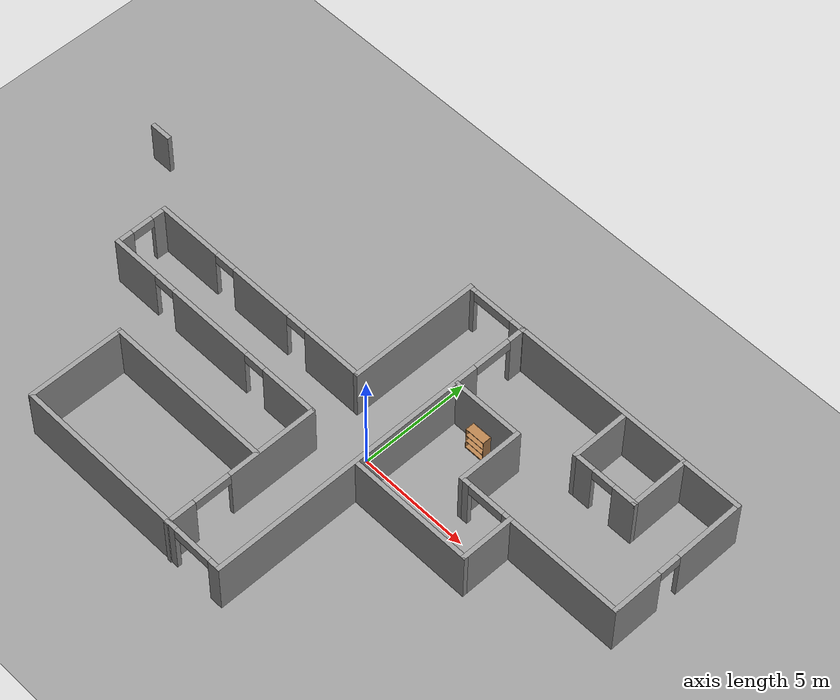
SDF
<sdf version="1.4">
 <world name="default">
  <light name="sun" type="directional">
   <pose>0 0 10 0 -0 0</pose>
   <diffuse>0.8 0.8 0.8 1</diffuse>
   <specular>0.2 0.2 0.2 1</specular>
   <attenuation>
    <range>1000</range>
    <constant>0.9</constant>
    <linear>0.01</linear>
    <quadratic>0.001</quadratic>
   </attenuation>
   <direction>0.5 0.1 -0.9</direction>
  </light>
  <scene><ambient>0.4 0.4 0.4 1</ambient><background>0.7 0.7 0.7 1</background><shadows>1</shadows></scene>
  <physics type="ode">
   <max_step_size>0.01</max_step_size>
   <real_time_factor>1</real_time_factor>
   <real_time_update_rate>100</real_time_update_rate>
   <gravity>0 0 -9.8</gravity>
  </physics>
  <model name="bookshelf">
   <static>1</static>
   <link name="link">
    <inertial><mass>1</mass></inertial>
    <collision name="back">
     <pose>0 0.005 0.6 0 -0 0</pose>
     <geometry><box><size>0.9 0.01 1.2</size></box></geometry>
    </collision>
    <visual name="visual1">
     <pose>0 0.005 0.6 0 -0 0</pose>
     <geometry><box><size>0.9 0.01 1.2</size></box></geometry>
     <material>
      <script><uri>file://media/materials/scripts/gazebo.material</uri><name>Gazebo/Wood</name></script>
     </material>
    </visual>
    <collision name="left_side">
     <pose>0.45 -0.195 0.6 0 -0 0</pose>
     <geometry><box><size>0.02 0.4 1.2</size></box></geometry>
    </collision>
    <visual name="visual2">
     <pose>0.45 -0.195 0.6 0 -0 0</pose>
     <geometry><box><size>0.02 0.4 1.2</size></box></geometry>
     <material>
      <script><uri>file://media/materials/scripts/gazebo.material</uri><name>Gazebo/Wood</name></script>
     </material>
    </visual>
    <collision name="right_side">
     <pose>-0.45 -0.195 0.6 0 -0 0</pose>
     <geometry><box><size>0.02 0.4 1.2</size></box></geometry>
    </collision>
    <visual name="visual3">
     <pose>-0.45 -0.195 0.6 0 -0 0</pose>
     <geometry><box><size>0.02 0.4 1.2</size></box></geometry>
     <material>
      <script><uri>file://media/materials/scripts/gazebo.material</uri><name>Gazebo/Wood</name></script>
     </material>
    </visual>
    <collision name="bottom">
     <pose>0 -0.195 0.03 0 -0 0</pose>
     <geometry><box><size>0.88 0.4 0.06</size></box></geometry>
    </collision>
    <visual name="visual4">
     <pose>0 -0.195 0.03 0 -0 0</pose>
     <geometry><box><size>0.88 0.4 0.06</size></box></geometry>
     <material>
      <script><uri>file://media/materials/scripts/gazebo.material</uri><name>Gazebo/Wood</name></script>
     </material>
    </visual>
    <collision name="top">
     <pose>0 -0.195 1.19 0 -0 0</pose>
     <geometry><box><size>0.88 0.4 0.02</size></box></geometry>
    </collision>
    <visual name="visual5">
     <pose>0 -0.195 1.19 0 -0 0</pose>
     <geometry><box><size>0.88 0.4 0.02</size></box></geometry>
     <material>
      <script><uri>file://media/materials/scripts/gazebo.material</uri><name>Gazebo/Wood</name></script>
     </material>
    </visual>
    <collision name="low_shelf">
     <pose>0 -0.195 0.43 0 -0 0</pose>
     <geometry><box><size>0.88 0.4 0.02</size></box></geometry>
    </collision>
    <visual name="visual6">
     <pose>0 -0.195 0.43 0 -0 0</pose>
     <geometry><box><size>0.88 0.4 0.02</size></box></geometry>
     <material>
      <script><uri>file://media/materials/scripts/gazebo.material</uri><name>Gazebo/Wood</name></script>
     </material>
    </visual>
    <collision name="high_shelf">
     <pose>0 -0.195 0.8 0 -0 0</pose>
     <geometry><box><size>0.88 0.4 0.02</size></box></geometry>
    </collision>
    <visual name="visual7">
     <pose>0 -0.195 0.8 0 -0 0</pose>
     <geometry><box><size>0.88 0.4 0.02</size></box></geometry>
     <material>
      <script><uri>file://media/materials/scripts/gazebo.material</uri><name>Gazebo/Wood</name></script>
     </material>
    </visual>
    <velocity_decay><linear>0</linear><angular>0</angular></velocity_decay>
   </link>
   <pose>2.51842 3.49879 0 0 -0 0</pose>
  </model>
  <model name="ground_plane_0">
   <static>1</static>
   <link name="link">
    <collision name="collision">
     <geometry><plane><normal>0 0 1</normal><size>100 100</size></plane></geometry>
     <surface><friction><ode><mu>100</mu><mu2>50</mu2></ode></friction></surface>
    </collision>
    <visual name="visual">
     <cast_shadows>0</cast_shadows>
     <geometry><plane><normal>0 0 1</normal><size>100 100</size></plane></geometry>
     <material>
      <script><uri>file://media/materials/scripts/gazebo.material</uri><name>Gazebo/Grey</name></script>
     </material>
    </visual>
    <velocity_decay><linear>0</linear><angular>0</angular></velocity_decay>
   </link>
   <pose>0.497681 0 0 0 -0 0</pose>
  </model>
  <spherical_coordinates>
   <surface_model>EARTH_WGS84</surface_model>
   <latitude_deg>0</latitude_deg>
   <longitude_deg>0</longitude_deg>
   <elevation>0</elevation>
   <heading_deg>0</heading_deg>
  </spherical_coordinates>
  <model name="turtlebot_hallways">
   <link name="Door_0">
    <collision name="Door_0_Collision">
     <geometry><box><size>1 0.2 2</size></box></geometry>
     <pose>0 0 1 0 -0 0</pose>
    </collision>
    <visual name="Door_0_Visual">
     <pose>0 0 1 0 -0 0</pose>
     <geometry><box><size>1 0.2 2</size></box></geometry>
     <material>
      <script><uri>file://media/materials/scripts/gazebo.material</uri><name>Gazebo/Grey</name></script>
     </material>
    </visual>
    <velocity_decay><linear>0</linear><angular>0</angular></velocity_decay>
    <pose>-14.0824 4.01277 0 0 -0 0</pose>
   </link>
   <link name="Wall_12">
    <collision name="Wall_12_Collision">
     <geometry><box><size>6.1036 0.2 2.5</size></box></geometry>
     <pose>0 0 1.25 0 -0 0</pose>
    </collision>
    <visual name="Wall_12_Visual">
     <pose>0 0 1.25 0 -0 0</pose>
     <geometry><box><size>6.1036 0.2 2.5</size></box></geometry>
     <material>
      <script><uri>file://media/materials/scripts/gazebo.material</uri><name>Gazebo/Grey</name></script>
     </material>
    </visual>
    <velocity_decay><linear>0</linear><angular>0</angular></velocity_decay>
    <pose>0.131368 4.23159 0 0 -0 1.5708</pose>
   </link>
   <link name="Wall_21">
    <pose>0.204907 -4.58192 0 0 0 -1.5708</pose>
    <visual name="Wall_21_Visual_0">
     <pose>-1.52877 0 1.25 0 -0 0</pose>
     <geometry><box><size>4.15745 0.2 2.5</size></box></geometry>
     <material>
      <script><uri>file://media/materials/scripts/gazebo.material</uri><name>Gazebo/Grey</name></script>
     </material>
    </visual>
    <collision name="Wall_21_Collision_0">
     <geometry><box><size>4.15745 0.2 2.5</size></box></geometry>
     <pose>-1.52877 0 1.25 0 -0 0</pose>
    </collision>
    <visual name="Wall_21_Visual_1">
     <pose>2.92258 0 1.25 0 -0 0</pose>
     <geometry><box><size>1.36985 0.2 2.5</size></box></geometry>
     <material>
      <script><uri>file://media/materials/scripts/gazebo.material</uri><name>Gazebo/Grey</name></script>
     </material>
    </visual>
    <collision name="Wall_21_Collision_1">
     <geometry><box><size>1.36985 0.2 2.5</size></box></geometry>
     <pose>2.92258 0 1.25 0 -0 0</pose>
    </collision>
    <visual name="Wall_21_Visual_2">
     <pose>1.3938 0 2.25 0 -0 0</pose>
     <geometry><box><size>1.6877 0.2 0.5</size></box></geometry>
     <material>
      <script><uri>file://media/materials/scripts/gazebo.material</uri><name>Gazebo/Grey</name></script>
     </material>
    </visual>
    <collision name="Wall_21_Collision_2">
     <geometry><box><size>1.6877 0.2 0.5</size></box></geometry>
     <pose>1.3938 0 2.25 0 -0 0</pose>
    </collision>
    <velocity_decay><linear>0</linear><angular>0</angular></velocity_decay>
   </link>
   <link name="Wall_23">
    <collision name="Wall_23_Collision">
     <geometry><box><size>7.79 0.2 2.5</size></box></geometry>
     <pose>0 0 1.25 0 -0 0</pose>
    </collision>
    <visual name="Wall_23_Visual">
     <pose>0 0 1.25 0 -0 0</pose>
     <geometry><box><size>7.79 0.2 2.5</size></box></geometry>
     <material>
      <script><uri>file://media/materials/scripts/gazebo.material</uri><name>Gazebo/Grey</name></script>
     </material>
    </visual>
    <velocity_decay><linear>0</linear><angular>0</angular></velocity_decay>
    <pose>-3.63609 -3.78497 0 0 -0 3.14159</pose>
   </link>
   <link name="Wall_24">
    <collision name="Wall_24_Collision">
     <geometry><box><size>4.455 0.2 2.5</size></box></geometry>
     <pose>0 0 1.25 0 -0 0</pose>
    </collision>
    <visual name="Wall_24_Visual">
     <pose>0 0 1.25 0 -0 0</pose>
     <geometry><box><size>4.455 0.2 2.5</size></box></geometry>
     <material>
      <script><uri>file://media/materials/scripts/gazebo.material</uri><name>Gazebo/Grey</name></script>
     </material>
    </visual>
    <velocity_decay><linear>0</linear><angular>0</angular></velocity_decay>
    <pose>-7.43109 -5.91247 0 0 0 -1.5708</pose>
   </link>
   <link name="Wall_25">
    <collision name="Wall_25_Collision">
     <geometry><box><size>7.859 0.2 2.5</size></box></geometry>
     <pose>0 0 1.25 0 -0 0</pose>
    </collision>
    <visual name="Wall_25_Visual">
     <pose>0 0 1.25 0 -0 0</pose>
     <geometry><box><size>7.859 0.2 2.5</size></box></geometry>
     <material>
      <script><uri>file://media/materials/scripts/gazebo.material</uri><name>Gazebo/Grey</name></script>
     </material>
    </visual>
    <velocity_decay><linear>0</linear><angular>0</angular></velocity_decay>
    <pose>-3.60159 -8.03997 0 0 -0 0</pose>
   </link>
   <link name="Wall_34">
    <collision name="Wall_34_Collision">
     <geometry><box><size>10.9916 0.2 2.5</size></box></geometry>
     <pose>0 0 1.25 0 -0 0</pose>
    </collision>
    <visual name="Wall_34_Visual">
     <pose>0 0 1.25 0 -0 0</pose>
     <geometry><box><size>10.9916 0.2 2.5</size></box></geometry>
     <material>
      <script><uri>file://media/materials/scripts/gazebo.material</uri><name>Gazebo/Grey</name></script>
     </material>
    </visual>
    <velocity_decay><linear>0</linear><angular>0</angular></velocity_decay>
    <pose>8.36236 7.18718 0 0 -0 0</pose>
   </link>
   <link name="Wall_35">
    <pose>13.7582 4.0264 0 0 0 -1.5708</pose>
    <visual name="Wall_35_Visual_0">
     <pose>-1.66217 0 1.25 0 -0 0</pose>
     <geometry><box><size>3.1972 0.2 2.5</size></box></geometry>
     <material>
      <script><uri>file://media/materials/scripts/gazebo.material</uri><name>Gazebo/Grey</name></script>
     </material>
    </visual>
    <collision name="Wall_35_Collision_0">
     <geometry><box><size>3.1972 0.2 2.5</size></box></geometry>
     <pose>-1.66217 0 1.25 0 -0 0</pose>
    </collision>
    <visual name="Wall_35_Visual_1">
     <pose>2.0986 0 1.25 0 -0 0</pose>
     <geometry><box><size>2.32435 0.2 2.5</size></box></geometry>
     <material>
      <script><uri>file://media/materials/scripts/gazebo.material</uri><name>Gazebo/Grey</name></script>
     </material>
    </visual>
    <collision name="Wall_35_Collision_1">
     <geometry><box><size>2.32435 0.2 2.5</size></box></geometry>
     <pose>2.0986 0 1.25 0 -0 0</pose>
    </collision>
    <visual name="Wall_35_Visual_2">
     <pose>0.436425 0 2.25 0 -0 0</pose>
     <geometry><box><size>1 0.2 0.5</size></box></geometry>
     <material>
      <script><uri>file://media/materials/scripts/gazebo.material</uri><name>Gazebo/Grey</name></script>
     </material>
    </visual>
    <collision name="Wall_35_Collision_2">
     <geometry><box><size>1 0.2 0.5</size></box></geometry>
     <pose>0.436425 0 2.25 0 -0 0</pose>
    </collision>
    <velocity_decay><linear>0</linear><angular>0</angular></velocity_decay>
   </link>
   <link name="Wall_36">
    <pose>10.0155 0.865626 0 0 -0 3.14159</pose>
    <visual name="Wall_36_Visual_0">
     <pose>-1.01415 0 1.25 0 -0 0</pose>
     <geometry><box><size>5.65705 0.2 2.5</size></box></geometry>
     <material>
      <script><uri>file://media/materials/scripts/gazebo.material</uri><name>Gazebo/Grey</name></script>
     </material>
    </visual>
    <collision name="Wall_36_Collision_0">
     <geometry><box><size>5.65705 0.2 2.5</size></box></geometry>
     <pose>-1.01415 0 1.25 0 -0 0</pose>
    </collision>
    <visual name="Wall_36_Visual_1">
     <pose>3.67238 0 1.25 0 -0 0</pose>
     <geometry><box><size>0.340599 0.2 2.5</size></box></geometry>
     <material>
      <script><uri>file://media/materials/scripts/gazebo.material</uri><name>Gazebo/Grey</name></script>
     </material>
    </visual>
    <collision name="Wall_36_Collision_1">
     <geometry><box><size>0.340599 0.2 2.5</size></box></geometry>
     <pose>3.67238 0 1.25 0 -0 0</pose>
    </collision>
    <visual name="Wall_36_Visual_2">
     <pose>2.65823 0 2.25 0 -0 0</pose>
     <geometry><box><size>1.6877 0.2 0.5</size></box></geometry>
     <material>
      <script><uri>file://media/materials/scripts/gazebo.material</uri><name>Gazebo/Grey</name></script>
     </material>
    </visual>
    <collision name="Wall_36_Collision_2">
     <geometry><box><size>1.6877 0.2 0.5</size></box></geometry>
     <pose>2.65823 0 2.25 0 -0 0</pose>
    </collision>
    <velocity_decay><linear>0</linear><angular>0</angular></velocity_decay>
   </link>
   <link name="Wall_38">
    <collision name="Wall_38_Collision">
     <geometry><box><size>3.29465 0.2 2.5</size></box></geometry>
     <pose>0 0 1.25 0 -0 0</pose>
    </collision>
    <visual name="Wall_38_Visual">
     <pose>0 0 1.25 0 -0 0</pose>
     <geometry><box><size>3.29465 0.2 2.5</size></box></geometry>
     <material>
      <script><uri>file://media/materials/scripts/gazebo.material</uri><name>Gazebo/Grey</name></script>
     </material>
    </visual>
    <velocity_decay><linear>0</linear><angular>0</angular></velocity_decay>
    <pose>4.56679 3.66933 0 0 -0 0</pose>
   </link>
   <link name="Wall_39">
    <collision name="Wall_39_Collision">
     <geometry><box><size>3.0037 0.2 2.5</size></box></geometry>
     <pose>0 0 1.25 0 -0 0</pose>
    </collision>
    <visual name="Wall_39_Visual">
     <pose>0 0 1.25 0 -0 0</pose>
     <geometry><box><size>3.0037 0.2 2.5</size></box></geometry>
     <material>
      <script><uri>file://media/materials/scripts/gazebo.material</uri><name>Gazebo/Grey</name></script>
     </material>
    </visual>
    <velocity_decay><linear>0</linear><angular>0</angular></velocity_decay>
    <pose>6.11411 2.26748 0 0 0 -1.5708</pose>
   </link>
   <link name="Wall_42">
    <collision name="Wall_42_Collision">
     <geometry><box><size>2.50115 0.2 2.5</size></box></geometry>
     <pose>0 0 1.25 0 -0 0</pose>
    </collision>
    <visual name="Wall_42_Visual">
     <pose>0 0 1.25 0 -0 0</pose>
     <geometry><box><size>2.50115 0.2 2.5</size></box></geometry>
     <material>
      <script><uri>file://media/materials/scripts/gazebo.material</uri><name>Gazebo/Grey</name></script>
     </material>
    </visual>
    <velocity_decay><linear>0</linear><angular>0</angular></velocity_decay>
    <pose>8.54751 -0.284949 0 0 0 -1.5708</pose>
   </link>
   <link name="Wall_43">
    <collision name="Wall_43_Collision">
     <geometry><box><size>5.67515 0.2 2.5</size></box></geometry>
     <pose>0 0 1.25 0 -0 0</pose>
    </collision>
    <visual name="Wall_43_Visual">
     <pose>0 0 1.25 0 -0 0</pose>
     <geometry><box><size>5.67515 0.2 2.5</size></box></geometry>
     <material>
      <script><uri>file://media/materials/scripts/gazebo.material</uri><name>Gazebo/Grey</name></script>
     </material>
    </visual>
    <velocity_decay><linear>0</linear><angular>0</angular></velocity_decay>
    <pose>5.80994 -1.43552 0 0 -0 3.14159</pose>
   </link>
   <link name="Wall_46">
    <collision name="Wall_46_Collision">
     <geometry><box><size>2.7921 0.2 2.5</size></box></geometry>
     <pose>0 0 1.25 0 -0 0</pose>
    </collision>
    <visual name="Wall_46_Visual">
     <pose>0 0 1.25 0 -0 0</pose>
     <geometry><box><size>2.7921 0.2 2.5</size></box></geometry>
     <material>
      <script><uri>file://media/materials/scripts/gazebo.material</uri><name>Gazebo/Grey</name></script>
     </material>
    </visual>
    <velocity_decay><linear>0</linear><angular>0</angular></velocity_decay>
    <pose>11.1396 5.86468 0 0 0 -1.5708</pose>
   </link>
   <link name="Wall_47">
    <pose>9.68486 4.56863 0 0 -0 3.14159</pose>
    <visual name="Wall_47_Visual_0">
     <pose>-1.00093 0 1.25 0 -0 0</pose>
     <geometry><box><size>1.10765 0.2 2.5</size></box></geometry>
     <material>
      <script><uri>file://media/materials/scripts/gazebo.material</uri><name>Gazebo/Grey</name></script>
     </material>
    </visual>
    <collision name="Wall_47_Collision_0">
     <geometry><box><size>1.10765 0.2 2.5</size></box></geometry>
     <pose>-1.00093 0 1.25 0 -0 0</pose>
    </collision>
    <visual name="Wall_47_Visual_1">
     <pose>1.05383 0 1.25 0 -0 0</pose>
     <geometry><box><size>1.00185 0.2 2.5</size></box></geometry>
     <material>
      <script><uri>file://media/materials/scripts/gazebo.material</uri><name>Gazebo/Grey</name></script>
     </material>
    </visual>
    <collision name="Wall_47_Collision_1">
     <geometry><box><size>1.00185 0.2 2.5</size></box></geometry>
     <pose>1.05383 0 1.25 0 -0 0</pose>
    </collision>
    <visual name="Wall_47_Visual_2">
     <pose>0.0529 0 2.25 0 -0 0</pose>
     <geometry><box><size>1 0.2 0.5</size></box></geometry>
     <material>
      <script><uri>file://media/materials/scripts/gazebo.material</uri><name>Gazebo/Grey</name></script>
     </material>
    </visual>
    <collision name="Wall_47_Collision_2">
     <geometry><box><size>1 0.2 0.5</size></box></geometry>
     <pose>0.0529 0 2.25 0 -0 0</pose>
    </collision>
    <velocity_decay><linear>0</linear><angular>0</angular></velocity_decay>
   </link>
   <link name="Wall_48">
    <collision name="Wall_48_Collision">
     <geometry><box><size>2.65985 0.2 2.5</size></box></geometry>
     <pose>0 0 1.25 0 -0 0</pose>
    </collision>
    <visual name="Wall_48_Visual">
     <pose>0 0 1.25 0 -0 0</pose>
     <geometry><box><size>2.65985 0.2 2.5</size></box></geometry>
     <material>
      <script><uri>file://media/materials/scripts/gazebo.material</uri><name>Gazebo/Grey</name></script>
     </material>
    </visual>
    <velocity_decay><linear>0</linear><angular>0</angular></velocity_decay>
    <pose>8.23011 5.79855 0 0 -0 1.5708</pose>
   </link>
   <link name="Wall_5">
    <pose>-10.6968 0.058493 0 0 0 -1.5708</pose>
    <visual name="Wall_5_Visual_0">
     <pose>-0.890466 0 1.25 0 -0 0</pose>
     <geometry><box><size>0.625346 0.2 2.5</size></box></geometry>
     <material>
      <script><uri>file://media/materials/scripts/gazebo.material</uri><name>Gazebo/Grey</name></script>
     </material>
    </visual>
    <collision name="Wall_5_Collision_0">
     <geometry><box><size>0.625346 0.2 2.5</size></box></geometry>
     <pose>-0.890466 0 1.25 0 -0 0</pose>
    </collision>
    <visual name="Wall_5_Visual_1">
     <pose>0.812673 0 1.25 0 -0 0</pose>
     <geometry><box><size>0.780931 0.2 2.5</size></box></geometry>
     <material>
      <script><uri>file://media/materials/scripts/gazebo.material</uri><name>Gazebo/Grey</name></script>
     </material>
    </visual>
    <collision name="Wall_5_Collision_1">
     <geometry><box><size>0.780931 0.2 2.5</size></box></geometry>
     <pose>0.812673 0 1.25 0 -0 0</pose>
    </collision>
    <visual name="Wall_5_Visual_2">
     <pose>-0.077792 0 2.25 0 -0 0</pose>
     <geometry><box><size>1 0.2 0.5</size></box></geometry>
     <material>
      <script><uri>file://media/materials/scripts/gazebo.material</uri><name>Gazebo/Grey</name></script>
     </material>
    </visual>
    <collision name="Wall_5_Collision_2">
     <geometry><box><size>1 0.2 0.5</size></box></geometry>
     <pose>-0.077792 0 2.25 0 -0 0</pose>
    </collision>
    <velocity_decay><linear>0</linear><angular>0</angular></velocity_decay>
   </link>
   <link name="Wall_50">
    <pose>1.55149 -8.04802 0 0 -0 0</pose>
    <visual name="Wall_50_Visual_0">
     <pose>-1.19269 0 1.25 0 -0 0</pose>
     <geometry><box><size>0.538975 0.2 2.5</size></box></geometry>
     <material>
      <script><uri>file://media/materials/scripts/gazebo.material</uri><name>Gazebo/Grey</name></script>
     </material>
    </visual>
    <collision name="Wall_50_Collision_0">
     <geometry><box><size>0.538975 0.2 2.5</size></box></geometry>
     <pose>-1.19269 0 1.25 0 -0 0</pose>
    </collision>
    <visual name="Wall_50_Visual_1">
     <pose>1.16624 0 1.25 0 -0 0</pose>
     <geometry><box><size>0.591875 0.2 2.5</size></box></geometry>
     <material>
      <script><uri>file://media/materials/scripts/gazebo.material</uri><name>Gazebo/Grey</name></script>
     </material>
    </visual>
    <collision name="Wall_50_Collision_1">
     <geometry><box><size>0.591875 0.2 2.5</size></box></geometry>
     <pose>1.16624 0 1.25 0 -0 0</pose>
    </collision>
    <visual name="Wall_50_Visual_2">
     <pose>-0.02645 0 2.25 0 -0 0</pose>
     <geometry><box><size>1.7935 0.2 0.5</size></box></geometry>
     <material>
      <script><uri>file://media/materials/scripts/gazebo.material</uri><name>Gazebo/Grey</name></script>
     </material>
    </visual>
    <collision name="Wall_50_Collision_2">
     <geometry><box><size>1.7935 0.2 0.5</size></box></geometry>
     <pose>-0.02645 0 2.25 0 -0 0</pose>
    </collision>
    <velocity_decay><linear>0</linear><angular>0</angular></velocity_decay>
   </link>
   <link name="Wall_51">
    <pose>2.91366 -0.443649 0 0 -0 1.5708</pose>
    <visual name="Wall_51_Visual_0">
     <pose>-1.28526 0 1.25 0 -0 0</pose>
     <geometry><box><size>12.8382 0.2 2.5</size></box></geometry>
     <material>
      <script><uri>file://media/materials/scripts/gazebo.material</uri><name>Gazebo/Grey</name></script>
     </material>
    </visual>
    <collision name="Wall_51_Collision_0">
     <geometry><box><size>12.8382 0.2 2.5</size></box></geometry>
     <pose>-1.28526 0 1.25 0 -0 0</pose>
    </collision>
    <visual name="Wall_51_Visual_1">
     <pose>7.28941 0 1.25 0 -0 0</pose>
     <geometry><box><size>0.829925 0.2 2.5</size></box></geometry>
     <material>
      <script><uri>file://media/materials/scripts/gazebo.material</uri><name>Gazebo/Grey</name></script>
     </material>
    </visual>
    <collision name="Wall_51_Collision_1">
     <geometry><box><size>0.829925 0.2 2.5</size></box></geometry>
     <pose>7.28941 0 1.25 0 -0 0</pose>
    </collision>
    <visual name="Wall_51_Visual_2">
     <pose>6.00415 0 2.25 0 -0 0</pose>
     <geometry><box><size>1.7406 0.2 0.5</size></box></geometry>
     <material>
      <script><uri>file://media/materials/scripts/gazebo.material</uri><name>Gazebo/Grey</name></script>
     </material>
    </visual>
    <collision name="Wall_51_Collision_2">
     <geometry><box><size>1.7406 0.2 0.5</size></box></geometry>
     <pose>6.00415 0 2.25 0 -0 0</pose>
    </collision>
    <velocity_decay><linear>0</linear><angular>0</angular></velocity_decay>
   </link>
   <link name="Wall_52">
    <pose>1.53826 7.16073 0 0 -0 3.14159</pose>
    <visual name="Wall_52_Visual_0">
     <pose>-1.12656 0 1.25 0 -0 0</pose>
     <geometry><box><size>0.697675 0.2 2.5</size></box></geometry>
     <material>
      <script><uri>file://media/materials/scripts/gazebo.material</uri><name>Gazebo/Grey</name></script>
     </material>
    </visual>
    <collision name="Wall_52_Collision_0">
     <geometry><box><size>0.697675 0.2 2.5</size></box></geometry>
     <pose>-1.12656 0 1.25 0 -0 0</pose>
    </collision>
    <visual name="Wall_52_Visual_1">
     <pose>1.28526 0 1.25 0 -0 0</pose>
     <geometry><box><size>0.380275 0.2 2.5</size></box></geometry>
     <material>
      <script><uri>file://media/materials/scripts/gazebo.material</uri><name>Gazebo/Grey</name></script>
     </material>
    </visual>
    <collision name="Wall_52_Collision_1">
     <geometry><box><size>0.380275 0.2 2.5</size></box></geometry>
     <pose>1.28526 0 1.25 0 -0 0</pose>
    </collision>
    <visual name="Wall_52_Visual_2">
     <pose>0.1587 0 2.25 0 -0 0</pose>
     <geometry><box><size>1.87285 0.2 0.5</size></box></geometry>
     <material>
      <script><uri>file://media/materials/scripts/gazebo.material</uri><name>Gazebo/Grey</name></script>
     </material>
    </visual>
    <collision name="Wall_52_Collision_2">
     <geometry><box><size>1.87285 0.2 0.5</size></box></geometry>
     <pose>0.1587 0 2.25 0 -0 0</pose>
    </collision>
    <velocity_decay><linear>0</linear><angular>0</angular></velocity_decay>
   </link>
   <link name="Wall_7">
    <pose>-5.27255 -1.05386 0 0 -0 0</pose>
    <visual name="Wall_7_Visual_0">
     <pose>-4.36532 0 1.25 0 -0 0</pose>
     <geometry><box><size>2.32354 0.2 2.5</size></box></geometry>
     <material>
      <script><uri>file://media/materials/scripts/gazebo.material</uri><name>Gazebo/Grey</name></script>
     </material>
    </visual>
    <collision name="Wall_7_Collision_0">
     <geometry><box><size>2.32354 0.2 2.5</size></box></geometry>
     <pose>-4.36532 0 1.25 0 -0 0</pose>
    </collision>
    <visual name="Wall_7_Visual_1">
     <pose>-0.16496 0 1.25 0 -0 0</pose>
     <geometry><box><size>4.07717 0.2 2.5</size></box></geometry>
     <material>
      <script><uri>file://media/materials/scripts/gazebo.material</uri><name>Gazebo/Grey</name></script>
     </material>
    </visual>
    <collision name="Wall_7_Collision_1">
     <geometry><box><size>4.07717 0.2 2.5</size></box></geometry>
     <pose>-0.16496 0 1.25 0 -0 0</pose>
    </collision>
    <visual name="Wall_7_Visual_2">
     <pose>4.20036 0 1.25 0 -0 0</pose>
     <geometry><box><size>2.65346 0.2 2.5</size></box></geometry>
     <material>
      <script><uri>file://media/materials/scripts/gazebo.material</uri><name>Gazebo/Grey</name></script>
     </material>
    </visual>
    <collision name="Wall_7_Collision_2">
     <geometry><box><size>2.65346 0.2 2.5</size></box></geometry>
     <pose>4.20036 0 1.25 0 -0 0</pose>
    </collision>
    <visual name="Wall_7_Visual_3">
     <pose>-2.70355 0 2.25 0 -0 0</pose>
     <geometry><box><size>1 0.2 0.5</size></box></geometry>
     <material>
      <script><uri>file://media/materials/scripts/gazebo.material</uri><name>Gazebo/Grey</name></script>
     </material>
    </visual>
    <collision name="Wall_7_Collision_3">
     <geometry><box><size>1 0.2 0.5</size></box></geometry>
     <pose>-2.70355 0 2.25 0 -0 0</pose>
    </collision>
    <visual name="Wall_7_Visual_4">
     <pose>2.37362 0 2.25 0 -0 0</pose>
     <geometry><box><size>1 0.2 0.5</size></box></geometry>
     <material>
      <script><uri>file://media/materials/scripts/gazebo.material</uri><name>Gazebo/Grey</name></script>
     </material>
    </visual>
    <collision name="Wall_7_Collision_4">
     <geometry><box><size>1 0.2 0.5</size></box></geometry>
     <pose>2.37362 0 2.25 0 -0 0</pose>
    </collision>
    <velocity_decay><linear>0</linear><angular>0</angular></velocity_decay>
   </link>
   <link name="Wall_9">
    <pose>-5.30842 1.28039 0 0 -0 0</pose>
    <visual name="Wall_9_Visual_0">
     <pose>-3.91356 0 1.25 0 -0 0</pose>
     <geometry><box><size>3.13842 0.2 2.5</size></box></geometry>
     <material>
      <script><uri>file://media/materials/scripts/gazebo.material</uri><name>Gazebo/Grey</name></script>
     </material>
    </visual>
    <collision name="Wall_9_Collision_0">
     <geometry><box><size>3.13842 0.2 2.5</size></box></geometry>
     <pose>-3.91356 0 1.25 0 -0 0</pose>
    </collision>
    <visual name="Wall_9_Visual_1">
     <pose>0.162504 0 1.25 0 -0 0</pose>
     <geometry><box><size>3.01371 0.2 2.5</size></box></geometry>
     <material>
      <script><uri>file://media/materials/scripts/gazebo.material</uri><name>Gazebo/Grey</name></script>
     </material>
    </visual>
    <collision name="Wall_9_Collision_1">
     <geometry><box><size>3.01371 0.2 2.5</size></box></geometry>
     <pose>0.162504 0 1.25 0 -0 0</pose>
    </collision>
    <visual name="Wall_9_Visual_2">
     <pose>4.07606 0 1.25 0 -0 0</pose>
     <geometry><box><size>2.81341 0.2 2.5</size></box></geometry>
     <material>
      <script><uri>file://media/materials/scripts/gazebo.material</uri><name>Gazebo/Grey</name></script>
     </material>
    </visual>
    <collision name="Wall_9_Collision_2">
     <geometry><box><size>2.81341 0.2 2.5</size></box></geometry>
     <pose>4.07606 0 1.25 0 -0 0</pose>
    </collision>
    <visual name="Wall_9_Visual_3">
     <pose>-1.84435 0 2.25 0 -0 0</pose>
     <geometry><box><size>1 0.2 0.5</size></box></geometry>
     <material>
      <script><uri>file://media/materials/scripts/gazebo.material</uri><name>Gazebo/Grey</name></script>
     </material>
    </visual>
    <collision name="Wall_9_Collision_3">
     <geometry><box><size>1 0.2 0.5</size></box></geometry>
     <pose>-1.84435 0 2.25 0 -0 0</pose>
    </collision>
    <visual name="Wall_9_Visual_4">
     <pose>2.16936 0 2.25 0 -0 0</pose>
     <geometry><box><size>1 0.2 0.5</size></box></geometry>
     <material>
      <script><uri>file://media/materials/scripts/gazebo.material</uri><name>Gazebo/Grey</name></script>
     </material>
    </visual>
    <collision name="Wall_9_Collision_4">
     <geometry><box><size>1 0.2 0.5</size></box></geometry>
     <pose>2.16936 0 2.25 0 -0 0</pose>
    </collision>
    <velocity_decay><linear>0</linear><angular>0</angular></velocity_decay>
   </link>
   <static>1</static>
   <pose>-2 0 0 0 -0 0</pose>
  </model>
  <light name="sun_0" type="directional">
   <pose>17 -15 10 0 -0 0</pose>
   <diffuse>0.8 0.8 0.8 1</diffuse>
   <specular>0.2 0.2 0.2 1</specular>
   <attenuation>
    <range>1000</range>
    <constant>0.9</constant>
    <linear>0.01</linear>
    <quadratic>0.001</quadratic>
   </attenuation>
   <direction>-0.5 0.1 -0.9</direction>
  </light>
 </world>
</sdf>
